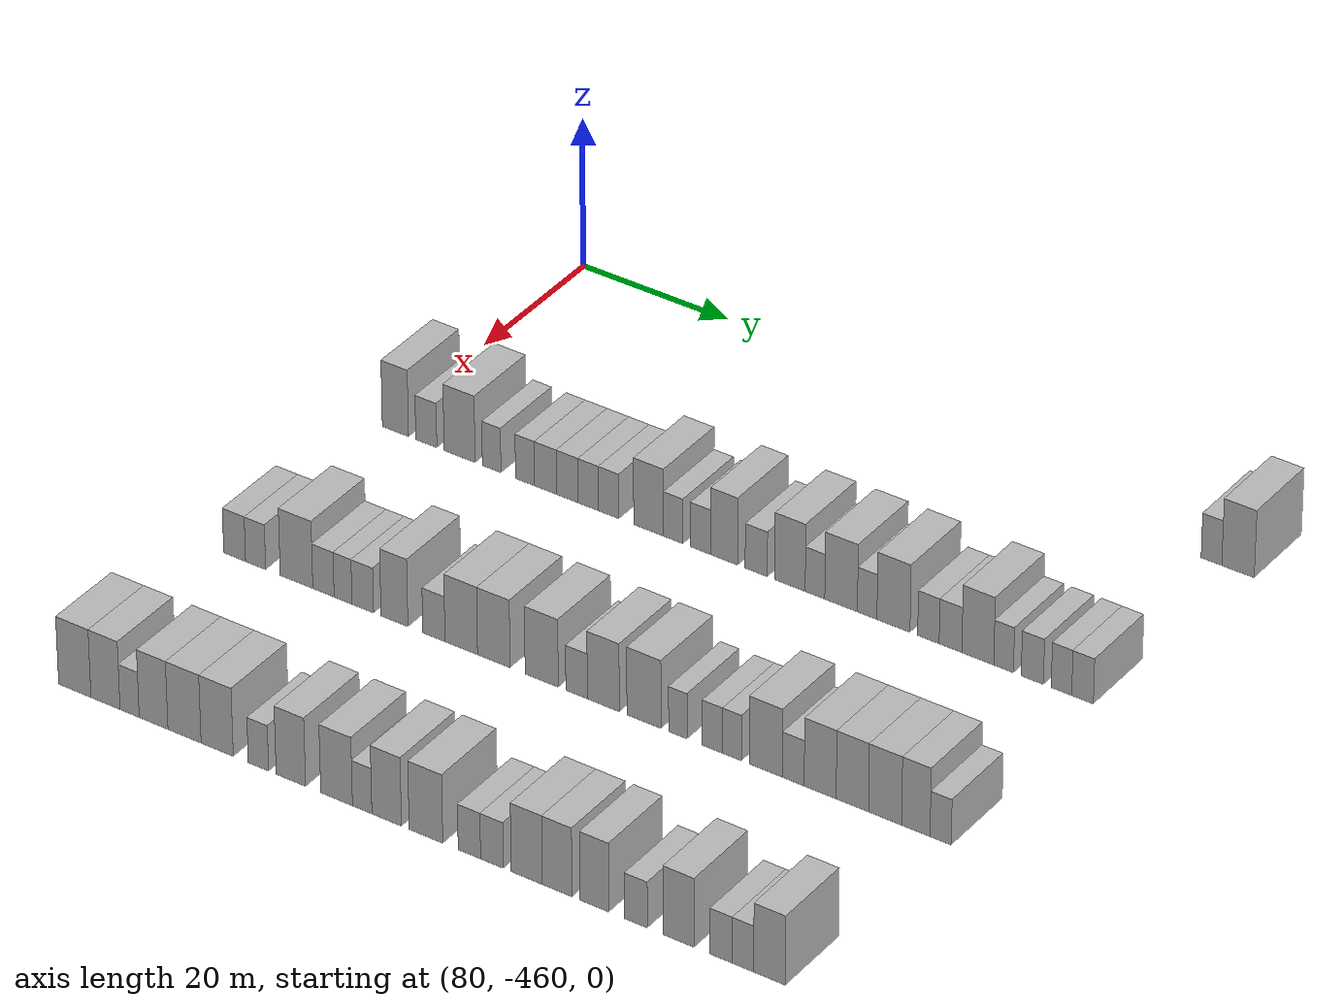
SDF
<sdf version="1.6">
 <world name="default">
  <model name="building_471">
   <static>1</static>
   <pose>85.0000 -368.7892 0 0.000000 0.000000 0.000000</pose>
   <link name="link">
    <pose>0 0 3.00 0 0 0</pose>
    <collision name="collision"><geometry><box><size>10.0000 2.6641 6.0000</size></box></geometry></collision>
    <visual name="visual">
     <cast_shadows>0</cast_shadows>
     <geometry><box><size>10.0000 2.6641 6.0000</size></box></geometry>
     <material>
      <script>
       <uri>model://HANNAS_wall/materials/scripts</uri>
       <uri>model://HANNAS_wall/materials/textures</uri>
       <name>vrc/HANNAS_wall</name>
      </script>
     </material>
    </visual>
   </link>
  </model>
  <model name="building_472">
   <static>1</static>
   <pose>85.0000 -365.3594 0 0.000000 0.000000 0.000000</pose>
   <link name="link">
    <pose>0 0 4.50 0 0 0</pose>
    <collision name="collision"><geometry><box><size>10.0000 4.1955 9.0000</size></box></geometry></collision>
    <visual name="visual">
     <cast_shadows>0</cast_shadows>
     <geometry><box><size>10.0000 4.1955 9.0000</size></box></geometry>
     <material>
      <script>
       <uri>model://HANNAS_wall/materials/scripts</uri>
       <uri>model://HANNAS_wall/materials/textures</uri>
       <name>vrc/HANNAS_wall</name>
      </script>
     </material>
    </visual>
   </link>
  </model>
  <model name="building_667">
   <static>1</static>
   <pose>115.0000 -458.1868 0 0.000000 0.000000 0.000000</pose>
   <link name="link">
    <pose>0 0 4.50 0 0 0</pose>
    <collision name="collision"><geometry><box><size>10.0000 3.6265 9.0000</size></box></geometry></collision>
    <visual name="visual">
     <cast_shadows>0</cast_shadows>
     <geometry><box><size>10.0000 3.6265 9.0000</size></box></geometry>
     <material>
      <script>
       <uri>model://HANNAS_wall/materials/scripts</uri>
       <uri>model://HANNAS_wall/materials/textures</uri>
       <name>vrc/HANNAS_wall</name>
      </script>
     </material>
    </visual>
   </link>
  </model>
  <model name="building_668">
   <static>1</static>
   <pose>115.0000 -453.9146 0 0.000000 0.000000 0.000000</pose>
   <link name="link">
    <pose>0 0 3.00 0 0 0</pose>
    <collision name="collision"><geometry><box><size>10.0000 2.9178 6.0000</size></box></geometry></collision>
    <visual name="visual">
     <cast_shadows>0</cast_shadows>
     <geometry><box><size>10.0000 2.9178 6.0000</size></box></geometry>
     <material>
      <script>
       <uri>model://HANNAS_wall/materials/scripts</uri>
       <uri>model://HANNAS_wall/materials/textures</uri>
       <name>vrc/HANNAS_wall</name>
      </script>
     </material>
    </visual>
   </link>
  </model>
  <model name="building_669">
   <static>1</static>
   <pose>115.0000 -449.3223 0 0.000000 0.000000 0.000000</pose>
   <link name="link">
    <pose>0 0 4.50 0 0 0</pose>
    <collision name="collision"><geometry><box><size>10.0000 4.2668 9.0000</size></box></geometry></collision>
    <visual name="visual">
     <cast_shadows>0</cast_shadows>
     <geometry><box><size>10.0000 4.2668 9.0000</size></box></geometry>
     <material>
      <script>
       <uri>model://HANNAS_wall/materials/scripts</uri>
       <uri>model://HANNAS_wall/materials/textures</uri>
       <name>vrc/HANNAS_wall</name>
      </script>
     </material>
    </visual>
   </link>
  </model>
  <model name="building_670">
   <static>1</static>
   <pose>115.0000 -444.9165 0 0.000000 0.000000 0.000000</pose>
   <link name="link">
    <pose>0 0 3.00 0 0 0</pose>
    <collision name="collision"><geometry><box><size>10.0000 2.5449 6.0000</size></box></geometry></collision>
    <visual name="visual">
     <cast_shadows>0</cast_shadows>
     <geometry><box><size>10.0000 2.5449 6.0000</size></box></geometry>
     <material>
      <script>
       <uri>model://HANNAS_wall/materials/scripts</uri>
       <uri>model://HANNAS_wall/materials/textures</uri>
       <name>vrc/HANNAS_wall</name>
      </script>
     </material>
    </visual>
   </link>
  </model>
  <model name="building_671">
   <static>1</static>
   <pose>115.0000 -440.3422 0 0.000000 0.000000 0.000000</pose>
   <link name="link">
    <pose>0 0 3.00 0 0 0</pose>
    <collision name="collision"><geometry><box><size>10.0000 2.6035 6.0000</size></box></geometry></collision>
    <visual name="visual">
     <cast_shadows>0</cast_shadows>
     <geometry><box><size>10.0000 2.6035 6.0000</size></box></geometry>
     <material>
      <script>
       <uri>model://HANNAS_wall/materials/scripts</uri>
       <uri>model://HANNAS_wall/materials/textures</uri>
       <name>vrc/HANNAS_wall</name>
      </script>
     </material>
    </visual>
   </link>
  </model>
  <model name="building_672">
   <static>1</static>
   <pose>115.0000 -437.5488 0 0.000000 0.000000 0.000000</pose>
   <link name="link">
    <pose>0 0 3.00 0 0 0</pose>
    <collision name="collision"><geometry><box><size>10.0000 2.9833 6.0000</size></box></geometry></collision>
    <visual name="visual">
     <cast_shadows>0</cast_shadows>
     <geometry><box><size>10.0000 2.9833 6.0000</size></box></geometry>
     <material>
      <script>
       <uri>model://HANNAS_wall/materials/scripts</uri>
       <uri>model://HANNAS_wall/materials/textures</uri>
       <name>vrc/HANNAS_wall</name>
      </script>
     </material>
    </visual>
   </link>
  </model>
  <model name="building_673">
   <static>1</static>
   <pose>115.0000 -434.5848 0 0.000000 0.000000 0.000000</pose>
   <link name="link">
    <pose>0 0 3.00 0 0 0</pose>
    <collision name="collision"><geometry><box><size>10.0000 2.9447 6.0000</size></box></geometry></collision>
    <visual name="visual">
     <cast_shadows>0</cast_shadows>
     <geometry><box><size>10.0000 2.9447 6.0000</size></box></geometry>
     <material>
      <script>
       <uri>model://HANNAS_wall/materials/scripts</uri>
       <uri>model://HANNAS_wall/materials/textures</uri>
       <name>vrc/HANNAS_wall</name>
      </script>
     </material>
    </visual>
   </link>
  </model>
  <model name="building_674">
   <static>1</static>
   <pose>115.0000 -431.7319 0 0.000000 0.000000 0.000000</pose>
   <link name="link">
    <pose>0 0 3.00 0 0 0</pose>
    <collision name="collision"><geometry><box><size>10.0000 2.7611 6.0000</size></box></geometry></collision>
    <visual name="visual">
     <cast_shadows>0</cast_shadows>
     <geometry><box><size>10.0000 2.7611 6.0000</size></box></geometry>
     <material>
      <script>
       <uri>model://HANNAS_wall/materials/scripts</uri>
       <uri>model://HANNAS_wall/materials/textures</uri>
       <name>vrc/HANNAS_wall</name>
      </script>
     </material>
    </visual>
   </link>
  </model>
  <model name="building_675">
   <static>1</static>
   <pose>115.0000 -428.9765 0 0.000000 0.000000 0.000000</pose>
   <link name="link">
    <pose>0 0 3.00 0 0 0</pose>
    <collision name="collision"><geometry><box><size>10.0000 2.7498 6.0000</size></box></geometry></collision>
    <visual name="visual">
     <cast_shadows>0</cast_shadows>
     <geometry><box><size>10.0000 2.7498 6.0000</size></box></geometry>
     <material>
      <script>
       <uri>model://HANNAS_wall/materials/scripts</uri>
       <uri>model://HANNAS_wall/materials/textures</uri>
       <name>vrc/HANNAS_wall</name>
      </script>
     </material>
    </visual>
   </link>
  </model>
  <model name="building_676">
   <static>1</static>
   <pose>115.0000 -423.5960 0 0.000000 0.000000 0.000000</pose>
   <link name="link">
    <pose>0 0 4.50 0 0 0</pose>
    <collision name="collision"><geometry><box><size>10.0000 4.0112 9.0000</size></box></geometry></collision>
    <visual name="visual">
     <cast_shadows>0</cast_shadows>
     <geometry><box><size>10.0000 4.0112 9.0000</size></box></geometry>
     <material>
      <script>
       <uri>model://HANNAS_wall/materials/scripts</uri>
       <uri>model://HANNAS_wall/materials/textures</uri>
       <name>vrc/HANNAS_wall</name>
      </script>
     </material>
    </visual>
   </link>
  </model>
  <model name="building_677">
   <static>1</static>
   <pose>115.0000 -420.2844 0 0.000000 0.000000 0.000000</pose>
   <link name="link">
    <pose>0 0 3.00 0 0 0</pose>
    <collision name="collision"><geometry><box><size>10.0000 2.6118 6.0000</size></box></geometry></collision>
    <visual name="visual">
     <cast_shadows>0</cast_shadows>
     <geometry><box><size>10.0000 2.6118 6.0000</size></box></geometry>
     <material>
      <script>
       <uri>model://HANNAS_wall/materials/scripts</uri>
       <uri>model://HANNAS_wall/materials/textures</uri>
       <name>vrc/HANNAS_wall</name>
      </script>
     </material>
    </visual>
   </link>
  </model>
  <model name="building_678">
   <static>1</static>
   <pose>115.0000 -416.6312 0 0.000000 0.000000 0.000000</pose>
   <link name="link">
    <pose>0 0 3.00 0 0 0</pose>
    <collision name="collision"><geometry><box><size>10.0000 2.6947 6.0000</size></box></geometry></collision>
    <visual name="visual">
     <cast_shadows>0</cast_shadows>
     <geometry><box><size>10.0000 2.6947 6.0000</size></box></geometry>
     <material>
      <script>
       <uri>model://HANNAS_wall/materials/scripts</uri>
       <uri>model://HANNAS_wall/materials/textures</uri>
       <name>vrc/HANNAS_wall</name>
      </script>
     </material>
    </visual>
   </link>
  </model>
  <model name="building_679">
   <static>1</static>
   <pose>115.0000 -413.4832 0 0.000000 0.000000 0.000000</pose>
   <link name="link">
    <pose>0 0 4.50 0 0 0</pose>
    <collision name="collision"><geometry><box><size>10.0000 3.6012 9.0000</size></box></geometry></collision>
    <visual name="visual">
     <cast_shadows>0</cast_shadows>
     <geometry><box><size>10.0000 3.6012 9.0000</size></box></geometry>
     <material>
      <script>
       <uri>model://HANNAS_wall/materials/scripts</uri>
       <uri>model://HANNAS_wall/materials/textures</uri>
       <name>vrc/HANNAS_wall</name>
      </script>
     </material>
    </visual>
   </link>
  </model>
  <model name="building_680">
   <static>1</static>
   <pose>115.0000 -409.2097 0 0.000000 0.000000 0.000000</pose>
   <link name="link">
    <pose>0 0 3.00 0 0 0</pose>
    <collision name="collision"><geometry><box><size>10.0000 2.9459 6.0000</size></box></geometry></collision>
    <visual name="visual">
     <cast_shadows>0</cast_shadows>
     <geometry><box><size>10.0000 2.9459 6.0000</size></box></geometry>
     <material>
      <script>
       <uri>model://HANNAS_wall/materials/scripts</uri>
       <uri>model://HANNAS_wall/materials/textures</uri>
       <name>vrc/HANNAS_wall</name>
      </script>
     </material>
    </visual>
   </link>
  </model>
  <model name="building_681">
   <static>1</static>
   <pose>115.0000 -404.7294 0 0.000000 0.000000 0.000000</pose>
   <link name="link">
    <pose>0 0 4.50 0 0 0</pose>
    <collision name="collision"><geometry><box><size>10.0000 4.0145 9.0000</size></box></geometry></collision>
    <visual name="visual">
     <cast_shadows>0</cast_shadows>
     <geometry><box><size>10.0000 4.0145 9.0000</size></box></geometry>
     <material>
      <script>
       <uri>model://HANNAS_wall/materials/scripts</uri>
       <uri>model://HANNAS_wall/materials/textures</uri>
       <name>vrc/HANNAS_wall</name>
      </script>
     </material>
    </visual>
   </link>
  </model>
  <model name="building_682">
   <static>1</static>
   <pose>115.0000 -401.4333 0 0.000000 0.000000 0.000000</pose>
   <link name="link">
    <pose>0 0 3.00 0 0 0</pose>
    <collision name="collision"><geometry><box><size>10.0000 2.5779 6.0000</size></box></geometry></collision>
    <visual name="visual">
     <cast_shadows>0</cast_shadows>
     <geometry><box><size>10.0000 2.5779 6.0000</size></box></geometry>
     <material>
      <script>
       <uri>model://HANNAS_wall/materials/scripts</uri>
       <uri>model://HANNAS_wall/materials/textures</uri>
       <name>vrc/HANNAS_wall</name>
      </script>
     </material>
    </visual>
   </link>
  </model>
  <model name="building_683">
   <static>1</static>
   <pose>115.0000 -397.9989 0 0.000000 0.000000 0.000000</pose>
   <link name="link">
    <pose>0 0 4.50 0 0 0</pose>
    <collision name="collision"><geometry><box><size>10.0000 4.2909 9.0000</size></box></geometry></collision>
    <visual name="visual">
     <cast_shadows>0</cast_shadows>
     <geometry><box><size>10.0000 4.2909 9.0000</size></box></geometry>
     <material>
      <script>
       <uri>model://HANNAS_wall/materials/scripts</uri>
       <uri>model://HANNAS_wall/materials/textures</uri>
       <name>vrc/HANNAS_wall</name>
      </script>
     </material>
    </visual>
   </link>
  </model>
  <model name="building_684">
   <static>1</static>
   <pose>115.0000 -394.5722 0 0.000000 0.000000 0.000000</pose>
   <link name="link">
    <pose>0 0 3.00 0 0 0</pose>
    <collision name="collision"><geometry><box><size>10.0000 2.5625 6.0000</size></box></geometry></collision>
    <visual name="visual">
     <cast_shadows>0</cast_shadows>
     <geometry><box><size>10.0000 2.5625 6.0000</size></box></geometry>
     <material>
      <script>
       <uri>model://HANNAS_wall/materials/scripts</uri>
       <uri>model://HANNAS_wall/materials/textures</uri>
       <name>vrc/HANNAS_wall</name>
      </script>
     </material>
    </visual>
   </link>
  </model>
  <model name="building_685">
   <static>1</static>
   <pose>115.0000 -391.1311 0 0.000000 0.000000 0.000000</pose>
   <link name="link">
    <pose>0 0 4.50 0 0 0</pose>
    <collision name="collision"><geometry><box><size>10.0000 4.3198 9.0000</size></box></geometry></collision>
    <visual name="visual">
     <cast_shadows>0</cast_shadows>
     <geometry><box><size>10.0000 4.3198 9.0000</size></box></geometry>
     <material>
      <script>
       <uri>model://HANNAS_wall/materials/scripts</uri>
       <uri>model://HANNAS_wall/materials/textures</uri>
       <name>vrc/HANNAS_wall</name>
      </script>
     </material>
    </visual>
   </link>
  </model>
  <model name="building_686">
   <static>1</static>
   <pose>115.0000 -386.5739 0 0.000000 0.000000 0.000000</pose>
   <link name="link">
    <pose>0 0 3.00 0 0 0</pose>
    <collision name="collision"><geometry><box><size>10.0000 2.7947 6.0000</size></box></geometry></collision>
    <visual name="visual">
     <cast_shadows>0</cast_shadows>
     <geometry><box><size>10.0000 2.7947 6.0000</size></box></geometry>
     <material>
      <script>
       <uri>model://HANNAS_wall/materials/scripts</uri>
       <uri>model://HANNAS_wall/materials/textures</uri>
       <name>vrc/HANNAS_wall</name>
      </script>
     </material>
    </visual>
   </link>
  </model>
  <model name="building_687">
   <static>1</static>
   <pose>115.0000 -383.7050 0 0.000000 0.000000 0.000000</pose>
   <link name="link">
    <pose>0 0 3.00 0 0 0</pose>
    <collision name="collision"><geometry><box><size>10.0000 2.9430 6.0000</size></box></geometry></collision>
    <visual name="visual">
     <cast_shadows>0</cast_shadows>
     <geometry><box><size>10.0000 2.9430 6.0000</size></box></geometry>
     <material>
      <script>
       <uri>model://HANNAS_wall/materials/scripts</uri>
       <uri>model://HANNAS_wall/materials/textures</uri>
       <name>vrc/HANNAS_wall</name>
      </script>
     </material>
    </visual>
   </link>
  </model>
  <model name="building_688">
   <static>1</static>
   <pose>115.0000 -380.1691 0 0.000000 0.000000 0.000000</pose>
   <link name="link">
    <pose>0 0 4.50 0 0 0</pose>
    <collision name="collision"><geometry><box><size>10.0000 4.1288 9.0000</size></box></geometry></collision>
    <visual name="visual">
     <cast_shadows>0</cast_shadows>
     <geometry><box><size>10.0000 4.1288 9.0000</size></box></geometry>
     <material>
      <script>
       <uri>model://HANNAS_wall/materials/scripts</uri>
       <uri>model://HANNAS_wall/materials/textures</uri>
       <name>vrc/HANNAS_wall</name>
      </script>
     </material>
    </visual>
   </link>
  </model>
  <model name="building_689">
   <static>1</static>
   <pose>115.0000 -376.8340 0 0.000000 0.000000 0.000000</pose>
   <link name="link">
    <pose>0 0 3.00 0 0 0</pose>
    <collision name="collision"><geometry><box><size>10.0000 2.5415 6.0000</size></box></geometry></collision>
    <visual name="visual">
     <cast_shadows>0</cast_shadows>
     <geometry><box><size>10.0000 2.5415 6.0000</size></box></geometry>
     <material>
      <script>
       <uri>model://HANNAS_wall/materials/scripts</uri>
       <uri>model://HANNAS_wall/materials/textures</uri>
       <name>vrc/HANNAS_wall</name>
      </script>
     </material>
    </visual>
   </link>
  </model>
  <model name="building_690">
   <static>1</static>
   <pose>115.0000 -373.1361 0 0.000000 0.000000 0.000000</pose>
   <link name="link">
    <pose>0 0 3.00 0 0 0</pose>
    <collision name="collision"><geometry><box><size>10.0000 2.8544 6.0000</size></box></geometry></collision>
    <visual name="visual">
     <cast_shadows>0</cast_shadows>
     <geometry><box><size>10.0000 2.8544 6.0000</size></box></geometry>
     <material>
      <script>
       <uri>model://HANNAS_wall/materials/scripts</uri>
       <uri>model://HANNAS_wall/materials/textures</uri>
       <name>vrc/HANNAS_wall</name>
      </script>
     </material>
    </visual>
   </link>
  </model>
  <model name="building_691">
   <static>1</static>
   <pose>115.0000 -369.3981 0 0.000000 0.000000 0.000000</pose>
   <link name="link">
    <pose>0 0 3.00 0 0 0</pose>
    <collision name="collision"><geometry><box><size>10.0000 2.6216 6.0000</size></box></geometry></collision>
    <visual name="visual">
     <cast_shadows>0</cast_shadows>
     <geometry><box><size>10.0000 2.6216 6.0000</size></box></geometry>
     <material>
      <script>
       <uri>model://HANNAS_wall/materials/scripts</uri>
       <uri>model://HANNAS_wall/materials/textures</uri>
       <name>vrc/HANNAS_wall</name>
      </script>
     </material>
    </visual>
   </link>
  </model>
  <model name="building_692">
   <static>1</static>
   <pose>115.0000 -366.6998 0 0.000000 0.000000 0.000000</pose>
   <link name="link">
    <pose>0 0 3.00 0 0 0</pose>
    <collision name="collision"><geometry><box><size>10.0000 2.7748 6.0000</size></box></geometry></collision>
    <visual name="visual">
     <cast_shadows>0</cast_shadows>
     <geometry><box><size>10.0000 2.7748 6.0000</size></box></geometry>
     <material>
      <script>
       <uri>model://HANNAS_wall/materials/scripts</uri>
       <uri>model://HANNAS_wall/materials/textures</uri>
       <name>vrc/HANNAS_wall</name>
      </script>
     </material>
    </visual>
   </link>
  </model>
  <model name="building_890">
   <static>1</static>
   <pose>145.0000 -458.5070 0 0.000000 0.000000 0.000000</pose>
   <link name="link">
    <pose>0 0 3.00 0 0 0</pose>
    <collision name="collision"><geometry><box><size>10.0000 2.9860 6.0000</size></box></geometry></collision>
    <visual name="visual">
     <cast_shadows>0</cast_shadows>
     <geometry><box><size>10.0000 2.9860 6.0000</size></box></geometry>
     <material>
      <script>
       <uri>model://HANNAS_wall/materials/scripts</uri>
       <uri>model://HANNAS_wall/materials/textures</uri>
       <name>vrc/HANNAS_wall</name>
      </script>
     </material>
    </visual>
   </link>
  </model>
  <model name="building_891">
   <static>1</static>
   <pose>145.0000 -455.6371 0 0.000000 0.000000 0.000000</pose>
   <link name="link">
    <pose>0 0 3.00 0 0 0</pose>
    <collision name="collision"><geometry><box><size>10.0000 2.7538 6.0000</size></box></geometry></collision>
    <visual name="visual">
     <cast_shadows>0</cast_shadows>
     <geometry><box><size>10.0000 2.7538 6.0000</size></box></geometry>
     <material>
      <script>
       <uri>model://HANNAS_wall/materials/scripts</uri>
       <uri>model://HANNAS_wall/materials/textures</uri>
       <name>vrc/HANNAS_wall</name>
      </script>
     </material>
    </visual>
   </link>
  </model>
  <model name="building_892">
   <static>1</static>
   <pose>145.0000 -450.0409 0 0.000000 0.000000 0.000000</pose>
   <link name="link">
    <pose>0 0 4.50 0 0 0</pose>
    <collision name="collision"><geometry><box><size>10.0000 4.4386 9.0000</size></box></geometry></collision>
    <visual name="visual">
     <cast_shadows>0</cast_shadows>
     <geometry><box><size>10.0000 4.4386 9.0000</size></box></geometry>
     <material>
      <script>
       <uri>model://HANNAS_wall/materials/scripts</uri>
       <uri>model://HANNAS_wall/materials/textures</uri>
       <name>vrc/HANNAS_wall</name>
      </script>
     </material>
    </visual>
   </link>
  </model>
  <model name="building_893">
   <static>1</static>
   <pose>145.0000 -446.3734 0 0.000000 0.000000 0.000000</pose>
   <link name="link">
    <pose>0 0 3.00 0 0 0</pose>
    <collision name="collision"><geometry><box><size>10.0000 2.8964 6.0000</size></box></geometry></collision>
    <visual name="visual">
     <cast_shadows>0</cast_shadows>
     <geometry><box><size>10.0000 2.8964 6.0000</size></box></geometry>
     <material>
      <script>
       <uri>model://HANNAS_wall/materials/scripts</uri>
       <uri>model://HANNAS_wall/materials/textures</uri>
       <name>vrc/HANNAS_wall</name>
      </script>
     </material>
    </visual>
   </link>
  </model>
  <model name="building_894">
   <static>1</static>
   <pose>145.0000 -443.7107 0 0.000000 0.000000 0.000000</pose>
   <link name="link">
    <pose>0 0 3.00 0 0 0</pose>
    <collision name="collision"><geometry><box><size>10.0000 2.4290 6.0000</size></box></geometry></collision>
    <visual name="visual">
     <cast_shadows>0</cast_shadows>
     <geometry><box><size>10.0000 2.4290 6.0000</size></box></geometry>
     <material>
      <script>
       <uri>model://HANNAS_wall/materials/scripts</uri>
       <uri>model://HANNAS_wall/materials/textures</uri>
       <name>vrc/HANNAS_wall</name>
      </script>
     </material>
    </visual>
   </link>
  </model>
  <model name="building_895">
   <static>1</static>
   <pose>145.0000 -441.0350 0 0.000000 0.000000 0.000000</pose>
   <link name="link">
    <pose>0 0 3.00 0 0 0</pose>
    <collision name="collision"><geometry><box><size>10.0000 2.9222 6.0000</size></box></geometry></collision>
    <visual name="visual">
     <cast_shadows>0</cast_shadows>
     <geometry><box><size>10.0000 2.9222 6.0000</size></box></geometry>
     <material>
      <script>
       <uri>model://HANNAS_wall/materials/scripts</uri>
       <uri>model://HANNAS_wall/materials/textures</uri>
       <name>vrc/HANNAS_wall</name>
      </script>
     </material>
    </visual>
   </link>
  </model>
  <model name="building_896">
   <static>1</static>
   <pose>145.0000 -436.7615 0 0.000000 0.000000 0.000000</pose>
   <link name="link">
    <pose>0 0 4.50 0 0 0</pose>
    <collision name="collision"><geometry><box><size>10.0000 3.6248 9.0000</size></box></geometry></collision>
    <visual name="visual">
     <cast_shadows>0</cast_shadows>
     <geometry><box><size>10.0000 3.6248 9.0000</size></box></geometry>
     <material>
      <script>
       <uri>model://HANNAS_wall/materials/scripts</uri>
       <uri>model://HANNAS_wall/materials/textures</uri>
       <name>vrc/HANNAS_wall</name>
      </script>
     </material>
    </visual>
   </link>
  </model>
  <model name="building_897">
   <static>1</static>
   <pose>145.0000 -431.4637 0 0.000000 0.000000 0.000000</pose>
   <link name="link">
    <pose>0 0 3.00 0 0 0</pose>
    <collision name="collision"><geometry><box><size>10.0000 2.9710 6.0000</size></box></geometry></collision>
    <visual name="visual">
     <cast_shadows>0</cast_shadows>
     <geometry><box><size>10.0000 2.9710 6.0000</size></box></geometry>
     <material>
      <script>
       <uri>model://HANNAS_wall/materials/scripts</uri>
       <uri>model://HANNAS_wall/materials/textures</uri>
       <name>vrc/HANNAS_wall</name>
      </script>
     </material>
    </visual>
   </link>
  </model>
  <model name="building_898">
   <static>1</static>
   <pose>145.0000 -427.8027 0 0.000000 0.000000 0.000000</pose>
   <link name="link">
    <pose>0 0 4.50 0 0 0</pose>
    <collision name="collision"><geometry><box><size>10.0000 4.3509 9.0000</size></box></geometry></collision>
    <visual name="visual">
     <cast_shadows>0</cast_shadows>
     <geometry><box><size>10.0000 4.3509 9.0000</size></box></geometry>
     <material>
      <script>
       <uri>model://HANNAS_wall/materials/scripts</uri>
       <uri>model://HANNAS_wall/materials/textures</uri>
       <name>vrc/HANNAS_wall</name>
      </script>
     </material>
    </visual>
   </link>
  </model>
  <model name="building_899">
   <static>1</static>
   <pose>145.0000 -423.4592 0 0.000000 0.000000 0.000000</pose>
   <link name="link">
    <pose>0 0 4.50 0 0 0</pose>
    <collision name="collision"><geometry><box><size>10.0000 4.3362 9.0000</size></box></geometry></collision>
    <visual name="visual">
     <cast_shadows>0</cast_shadows>
     <geometry><box><size>10.0000 4.3362 9.0000</size></box></geometry>
     <material>
      <script>
       <uri>model://HANNAS_wall/materials/scripts</uri>
       <uri>model://HANNAS_wall/materials/textures</uri>
       <name>vrc/HANNAS_wall</name>
      </script>
     </material>
    </visual>
   </link>
  </model>
  <model name="building_900">
   <static>1</static>
   <pose>145.0000 -417.0983 0 0.000000 0.000000 0.000000</pose>
   <link name="link">
    <pose>0 0 4.50 0 0 0</pose>
    <collision name="collision"><geometry><box><size>10.0000 4.3856 9.0000</size></box></geometry></collision>
    <visual name="visual">
     <cast_shadows>0</cast_shadows>
     <geometry><box><size>10.0000 4.3856 9.0000</size></box></geometry>
     <material>
      <script>
       <uri>model://HANNAS_wall/materials/scripts</uri>
       <uri>model://HANNAS_wall/materials/textures</uri>
       <name>vrc/HANNAS_wall</name>
      </script>
     </material>
    </visual>
   </link>
  </model>
  <model name="building_901">
   <static>1</static>
   <pose>145.0000 -412.4858 0 0.000000 0.000000 0.000000</pose>
   <link name="link">
    <pose>0 0 3.00 0 0 0</pose>
    <collision name="collision"><geometry><box><size>10.0000 2.8395 6.0000</size></box></geometry></collision>
    <visual name="visual">
     <cast_shadows>0</cast_shadows>
     <geometry><box><size>10.0000 2.8395 6.0000</size></box></geometry>
     <material>
      <script>
       <uri>model://HANNAS_wall/materials/scripts</uri>
       <uri>model://HANNAS_wall/materials/textures</uri>
       <name>vrc/HANNAS_wall</name>
      </script>
     </material>
    </visual>
   </link>
  </model>
  <model name="building_902">
   <static>1</static>
   <pose>145.0000 -408.9696 0 0.000000 0.000000 0.000000</pose>
   <link name="link">
    <pose>0 0 4.50 0 0 0</pose>
    <collision name="collision"><geometry><box><size>10.0000 4.1930 9.0000</size></box></geometry></collision>
    <visual name="visual">
     <cast_shadows>0</cast_shadows>
     <geometry><box><size>10.0000 4.1930 9.0000</size></box></geometry>
     <material>
      <script>
       <uri>model://HANNAS_wall/materials/scripts</uri>
       <uri>model://HANNAS_wall/materials/textures</uri>
       <name>vrc/HANNAS_wall</name>
      </script>
     </material>
    </visual>
   </link>
  </model>
  <model name="building_903">
   <static>1</static>
   <pose>145.0000 -403.6508 0 0.000000 0.000000 0.000000</pose>
   <link name="link">
    <pose>0 0 4.50 0 0 0</pose>
    <collision name="collision"><geometry><box><size>10.0000 4.4447 9.0000</size></box></geometry></collision>
    <visual name="visual">
     <cast_shadows>0</cast_shadows>
     <geometry><box><size>10.0000 4.4447 9.0000</size></box></geometry>
     <material>
      <script>
       <uri>model://HANNAS_wall/materials/scripts</uri>
       <uri>model://HANNAS_wall/materials/textures</uri>
       <name>vrc/HANNAS_wall</name>
      </script>
     </material>
    </visual>
   </link>
  </model>
  <model name="building_904">
   <static>1</static>
   <pose>145.0000 -399.2280 0 0.000000 0.000000 0.000000</pose>
   <link name="link">
    <pose>0 0 3.00 0 0 0</pose>
    <collision name="collision"><geometry><box><size>10.0000 2.4009 6.0000</size></box></geometry></collision>
    <visual name="visual">
     <cast_shadows>0</cast_shadows>
     <geometry><box><size>10.0000 2.4009 6.0000</size></box></geometry>
     <material>
      <script>
       <uri>model://HANNAS_wall/materials/scripts</uri>
       <uri>model://HANNAS_wall/materials/textures</uri>
       <name>vrc/HANNAS_wall</name>
      </script>
     </material>
    </visual>
   </link>
  </model>
  <model name="building_905">
   <static>1</static>
   <pose>145.0000 -394.7225 0 0.000000 0.000000 0.000000</pose>
   <link name="link">
    <pose>0 0 3.00 0 0 0</pose>
    <collision name="collision"><geometry><box><size>10.0000 2.6101 6.0000</size></box></geometry></collision>
    <visual name="visual">
     <cast_shadows>0</cast_shadows>
     <geometry><box><size>10.0000 2.6101 6.0000</size></box></geometry>
     <material>
      <script>
       <uri>model://HANNAS_wall/materials/scripts</uri>
       <uri>model://HANNAS_wall/materials/textures</uri>
       <name>vrc/HANNAS_wall</name>
      </script>
     </material>
    </visual>
   </link>
  </model>
  <model name="building_906">
   <static>1</static>
   <pose>145.0000 -392.2000 0 0.000000 0.000000 0.000000</pose>
   <link name="link">
    <pose>0 0 3.00 0 0 0</pose>
    <collision name="collision"><geometry><box><size>10.0000 2.4347 6.0000</size></box></geometry></collision>
    <visual name="visual">
     <cast_shadows>0</cast_shadows>
     <geometry><box><size>10.0000 2.4347 6.0000</size></box></geometry>
     <material>
      <script>
       <uri>model://HANNAS_wall/materials/scripts</uri>
       <uri>model://HANNAS_wall/materials/textures</uri>
       <name>vrc/HANNAS_wall</name>
      </script>
     </material>
    </visual>
   </link>
  </model>
  <model name="building_907">
   <static>1</static>
   <pose>145.0000 -387.8361 0 0.000000 0.000000 0.000000</pose>
   <link name="link">
    <pose>0 0 4.50 0 0 0</pose>
    <collision name="collision"><geometry><box><size>10.0000 4.2931 9.0000</size></box></geometry></collision>
    <visual name="visual">
     <cast_shadows>0</cast_shadows>
     <geometry><box><size>10.0000 4.2931 9.0000</size></box></geometry>
     <material>
      <script>
       <uri>model://HANNAS_wall/materials/scripts</uri>
       <uri>model://HANNAS_wall/materials/textures</uri>
       <name>vrc/HANNAS_wall</name>
      </script>
     </material>
    </visual>
   </link>
  </model>
  <model name="building_908">
   <static>1</static>
   <pose>145.0000 -384.2962 0 0.000000 0.000000 0.000000</pose>
   <link name="link">
    <pose>0 0 3.00 0 0 0</pose>
    <collision name="collision"><geometry><box><size>10.0000 2.7867 6.0000</size></box></geometry></collision>
    <visual name="visual">
     <cast_shadows>0</cast_shadows>
     <geometry><box><size>10.0000 2.7867 6.0000</size></box></geometry>
     <material>
      <script>
       <uri>model://HANNAS_wall/materials/scripts</uri>
       <uri>model://HANNAS_wall/materials/textures</uri>
       <name>vrc/HANNAS_wall</name>
      </script>
     </material>
    </visual>
   </link>
  </model>
  <model name="building_909">
   <static>1</static>
   <pose>145.0000 -380.8576 0 0.000000 0.000000 0.000000</pose>
   <link name="link">
    <pose>0 0 4.50 0 0 0</pose>
    <collision name="collision"><geometry><box><size>10.0000 4.0905 9.0000</size></box></geometry></collision>
    <visual name="visual">
     <cast_shadows>0</cast_shadows>
     <geometry><box><size>10.0000 4.0905 9.0000</size></box></geometry>
     <material>
      <script>
       <uri>model://HANNAS_wall/materials/scripts</uri>
       <uri>model://HANNAS_wall/materials/textures</uri>
       <name>vrc/HANNAS_wall</name>
      </script>
     </material>
    </visual>
   </link>
  </model>
  <model name="building_910">
   <static>1</static>
   <pose>145.0000 -376.7476 0 0.000000 0.000000 0.000000</pose>
   <link name="link">
    <pose>0 0 4.50 0 0 0</pose>
    <collision name="collision"><geometry><box><size>10.0000 4.1295 9.0000</size></box></geometry></collision>
    <visual name="visual">
     <cast_shadows>0</cast_shadows>
     <geometry><box><size>10.0000 4.1295 9.0000</size></box></geometry>
     <material>
      <script>
       <uri>model://HANNAS_wall/materials/scripts</uri>
       <uri>model://HANNAS_wall/materials/textures</uri>
       <name>vrc/HANNAS_wall</name>
      </script>
     </material>
    </visual>
   </link>
  </model>
  <model name="building_911">
   <static>1</static>
   <pose>145.0000 -372.5850 0 0.000000 0.000000 0.000000</pose>
   <link name="link">
    <pose>0 0 4.50 0 0 0</pose>
    <collision name="collision"><geometry><box><size>10.0000 4.1958 9.0000</size></box></geometry></collision>
    <visual name="visual">
     <cast_shadows>0</cast_shadows>
     <geometry><box><size>10.0000 4.1958 9.0000</size></box></geometry>
     <material>
      <script>
       <uri>model://HANNAS_wall/materials/scripts</uri>
       <uri>model://HANNAS_wall/materials/textures</uri>
       <name>vrc/HANNAS_wall</name>
      </script>
     </material>
    </visual>
   </link>
  </model>
  <model name="building_912">
   <static>1</static>
   <pose>145.0000 -368.6812 0 0.000000 0.000000 0.000000</pose>
   <link name="link">
    <pose>0 0 4.50 0 0 0</pose>
    <collision name="collision"><geometry><box><size>10.0000 3.6118 9.0000</size></box></geometry></collision>
    <visual name="visual">
     <cast_shadows>0</cast_shadows>
     <geometry><box><size>10.0000 3.6118 9.0000</size></box></geometry>
     <material>
      <script>
       <uri>model://HANNAS_wall/materials/scripts</uri>
       <uri>model://HANNAS_wall/materials/textures</uri>
       <name>vrc/HANNAS_wall</name>
      </script>
     </material>
    </visual>
   </link>
  </model>
  <model name="building_913">
   <static>1</static>
   <pose>145.0000 -365.5414 0 0.000000 0.000000 0.000000</pose>
   <link name="link">
    <pose>0 0 3.00 0 0 0</pose>
    <collision name="collision"><geometry><box><size>10.0000 2.6677 6.0000</size></box></geometry></collision>
    <visual name="visual">
     <cast_shadows>0</cast_shadows>
     <geometry><box><size>10.0000 2.6677 6.0000</size></box></geometry>
     <material>
      <script>
       <uri>model://HANNAS_wall/materials/scripts</uri>
       <uri>model://HANNAS_wall/materials/textures</uri>
       <name>vrc/HANNAS_wall</name>
      </script>
     </material>
    </visual>
   </link>
  </model>
  <model name="building_1114">
   <static>1</static>
   <pose>175.0000 -457.8155 0 0.000000 0.000000 0.000000</pose>
   <link name="link">
    <pose>0 0 4.50 0 0 0</pose>
    <collision name="collision"><geometry><box><size>10.0000 4.3689 9.0000</size></box></geometry></collision>
    <visual name="visual">
     <cast_shadows>0</cast_shadows>
     <geometry><box><size>10.0000 4.3689 9.0000</size></box></geometry>
     <material>
      <script>
       <uri>model://HANNAS_wall/materials/scripts</uri>
       <uri>model://HANNAS_wall/materials/textures</uri>
       <name>vrc/HANNAS_wall</name>
      </script>
     </material>
    </visual>
   </link>
  </model>
  <model name="building_1115">
   <static>1</static>
   <pose>175.0000 -453.6605 0 0.000000 0.000000 0.000000</pose>
   <link name="link">
    <pose>0 0 4.50 0 0 0</pose>
    <collision name="collision"><geometry><box><size>10.0000 3.9412 9.0000</size></box></geometry></collision>
    <visual name="visual">
     <cast_shadows>0</cast_shadows>
     <geometry><box><size>10.0000 3.9412 9.0000</size></box></geometry>
     <material>
      <script>
       <uri>model://HANNAS_wall/materials/scripts</uri>
       <uri>model://HANNAS_wall/materials/textures</uri>
       <name>vrc/HANNAS_wall</name>
      </script>
     </material>
    </visual>
   </link>
  </model>
  <model name="building_1116">
   <static>1</static>
   <pose>175.0000 -450.3945 0 0.000000 0.000000 0.000000</pose>
   <link name="link">
    <pose>0 0 3.00 0 0 0</pose>
    <collision name="collision"><geometry><box><size>10.0000 2.5907 6.0000</size></box></geometry></collision>
    <visual name="visual">
     <cast_shadows>0</cast_shadows>
     <geometry><box><size>10.0000 2.5907 6.0000</size></box></geometry>
     <material>
      <script>
       <uri>model://HANNAS_wall/materials/scripts</uri>
       <uri>model://HANNAS_wall/materials/textures</uri>
       <name>vrc/HANNAS_wall</name>
      </script>
     </material>
    </visual>
   </link>
  </model>
  <model name="building_1117">
   <static>1</static>
   <pose>175.0000 -447.1640 0 0.000000 0.000000 0.000000</pose>
   <link name="link">
    <pose>0 0 4.50 0 0 0</pose>
    <collision name="collision"><geometry><box><size>10.0000 3.8704 9.0000</size></box></geometry></collision>
    <visual name="visual">
     <cast_shadows>0</cast_shadows>
     <geometry><box><size>10.0000 3.8704 9.0000</size></box></geometry>
     <material>
      <script>
       <uri>model://HANNAS_wall/materials/scripts</uri>
       <uri>model://HANNAS_wall/materials/textures</uri>
       <name>vrc/HANNAS_wall</name>
      </script>
     </material>
    </visual>
   </link>
  </model>
  <model name="building_1118">
   <static>1</static>
   <pose>175.0000 -443.0057 0 0.000000 0.000000 0.000000</pose>
   <link name="link">
    <pose>0 0 4.50 0 0 0</pose>
    <collision name="collision"><geometry><box><size>10.0000 4.4461 9.0000</size></box></geometry></collision>
    <visual name="visual">
     <cast_shadows>0</cast_shadows>
     <geometry><box><size>10.0000 4.4461 9.0000</size></box></geometry>
     <material>
      <script>
       <uri>model://HANNAS_wall/materials/scripts</uri>
       <uri>model://HANNAS_wall/materials/textures</uri>
       <name>vrc/HANNAS_wall</name>
      </script>
     </material>
    </visual>
   </link>
  </model>
  <model name="building_1119">
   <static>1</static>
   <pose>175.0000 -438.6319 0 0.000000 0.000000 0.000000</pose>
   <link name="link">
    <pose>0 0 4.50 0 0 0</pose>
    <collision name="collision"><geometry><box><size>10.0000 4.3015 9.0000</size></box></geometry></collision>
    <visual name="visual">
     <cast_shadows>0</cast_shadows>
     <geometry><box><size>10.0000 4.3015 9.0000</size></box></geometry>
     <material>
      <script>
       <uri>model://HANNAS_wall/materials/scripts</uri>
       <uri>model://HANNAS_wall/materials/textures</uri>
       <name>vrc/HANNAS_wall</name>
      </script>
     </material>
    </visual>
   </link>
  </model>
  <model name="building_1120">
   <static>1</static>
   <pose>175.0000 -433.1293 0 0.000000 0.000000 0.000000</pose>
   <link name="link">
    <pose>0 0 3.00 0 0 0</pose>
    <collision name="collision"><geometry><box><size>10.0000 2.7037 6.0000</size></box></geometry></collision>
    <visual name="visual">
     <cast_shadows>0</cast_shadows>
     <geometry><box><size>10.0000 2.7037 6.0000</size></box></geometry>
     <material>
      <script>
       <uri>model://HANNAS_wall/materials/scripts</uri>
       <uri>model://HANNAS_wall/materials/textures</uri>
       <name>vrc/HANNAS_wall</name>
      </script>
     </material>
    </visual>
   </link>
  </model>
  <model name="building_1121">
   <static>1</static>
   <pose>175.0000 -428.8271 0 0.000000 0.000000 0.000000</pose>
   <link name="link">
    <pose>0 0 4.50 0 0 0</pose>
    <collision name="collision"><geometry><box><size>10.0000 3.9008 9.0000</size></box></geometry></collision>
    <visual name="visual">
     <cast_shadows>0</cast_shadows>
     <geometry><box><size>10.0000 3.9008 9.0000</size></box></geometry>
     <material>
      <script>
       <uri>model://HANNAS_wall/materials/scripts</uri>
       <uri>model://HANNAS_wall/materials/textures</uri>
       <name>vrc/HANNAS_wall</name>
      </script>
     </material>
    </visual>
   </link>
  </model>
  <model name="building_1122">
   <static>1</static>
   <pose>175.0000 -422.7883 0 0.000000 0.000000 0.000000</pose>
   <link name="link">
    <pose>0 0 4.50 0 0 0</pose>
    <collision name="collision"><geometry><box><size>10.0000 4.1768 9.0000</size></box></geometry></collision>
    <visual name="visual">
     <cast_shadows>0</cast_shadows>
     <geometry><box><size>10.0000 4.1768 9.0000</size></box></geometry>
     <material>
      <script>
       <uri>model://HANNAS_wall/materials/scripts</uri>
       <uri>model://HANNAS_wall/materials/textures</uri>
       <name>vrc/HANNAS_wall</name>
      </script>
     </material>
    </visual>
   </link>
  </model>
  <model name="building_1123">
   <static>1</static>
   <pose>175.0000 -419.4272 0 0.000000 0.000000 0.000000</pose>
   <link name="link">
    <pose>0 0 3.00 0 0 0</pose>
    <collision name="collision"><geometry><box><size>10.0000 2.5453 6.0000</size></box></geometry></collision>
    <visual name="visual">
     <cast_shadows>0</cast_shadows>
     <geometry><box><size>10.0000 2.5453 6.0000</size></box></geometry>
     <material>
      <script>
       <uri>model://HANNAS_wall/materials/scripts</uri>
       <uri>model://HANNAS_wall/materials/textures</uri>
       <name>vrc/HANNAS_wall</name>
      </script>
     </material>
    </visual>
   </link>
  </model>
  <model name="building_1124">
   <static>1</static>
   <pose>175.0000 -416.2169 0 0.000000 0.000000 0.000000</pose>
   <link name="link">
    <pose>0 0 4.50 0 0 0</pose>
    <collision name="collision"><geometry><box><size>10.0000 3.8752 9.0000</size></box></geometry></collision>
    <visual name="visual">
     <cast_shadows>0</cast_shadows>
     <geometry><box><size>10.0000 3.8752 9.0000</size></box></geometry>
     <material>
      <script>
       <uri>model://HANNAS_wall/materials/scripts</uri>
       <uri>model://HANNAS_wall/materials/textures</uri>
       <name>vrc/HANNAS_wall</name>
      </script>
     </material>
    </visual>
   </link>
  </model>
  <model name="building_1125">
   <static>1</static>
   <pose>175.0000 -411.0865 0 0.000000 0.000000 0.000000</pose>
   <link name="link">
    <pose>0 0 4.50 0 0 0</pose>
    <collision name="collision"><geometry><box><size>10.0000 4.3857 9.0000</size></box></geometry></collision>
    <visual name="visual">
     <cast_shadows>0</cast_shadows>
     <geometry><box><size>10.0000 4.3857 9.0000</size></box></geometry>
     <material>
      <script>
       <uri>model://HANNAS_wall/materials/scripts</uri>
       <uri>model://HANNAS_wall/materials/textures</uri>
       <name>vrc/HANNAS_wall</name>
      </script>
     </material>
    </visual>
   </link>
  </model>
  <model name="building_1126">
   <static>1</static>
   <pose>175.0000 -405.4443 0 0.000000 0.000000 0.000000</pose>
   <link name="link">
    <pose>0 0 3.00 0 0 0</pose>
    <collision name="collision"><geometry><box><size>10.0000 2.8986 6.0000</size></box></geometry></collision>
    <visual name="visual">
     <cast_shadows>0</cast_shadows>
     <geometry><box><size>10.0000 2.8986 6.0000</size></box></geometry>
     <material>
      <script>
       <uri>model://HANNAS_wall/materials/scripts</uri>
       <uri>model://HANNAS_wall/materials/textures</uri>
       <name>vrc/HANNAS_wall</name>
      </script>
     </material>
    </visual>
   </link>
  </model>
  <model name="building_1127">
   <static>1</static>
   <pose>175.0000 -402.5219 0 0.000000 0.000000 0.000000</pose>
   <link name="link">
    <pose>0 0 3.00 0 0 0</pose>
    <collision name="collision"><geometry><box><size>10.0000 2.9462 6.0000</size></box></geometry></collision>
    <visual name="visual">
     <cast_shadows>0</cast_shadows>
     <geometry><box><size>10.0000 2.9462 6.0000</size></box></geometry>
     <material>
      <script>
       <uri>model://HANNAS_wall/materials/scripts</uri>
       <uri>model://HANNAS_wall/materials/textures</uri>
       <name>vrc/HANNAS_wall</name>
      </script>
     </material>
    </visual>
   </link>
  </model>
  <model name="building_1128">
   <static>1</static>
   <pose>175.0000 -398.0498 0 0.000000 0.000000 0.000000</pose>
   <link name="link">
    <pose>0 0 4.50 0 0 0</pose>
    <collision name="collision"><geometry><box><size>10.0000 3.9981 9.0000</size></box></geometry></collision>
    <visual name="visual">
     <cast_shadows>0</cast_shadows>
     <geometry><box><size>10.0000 3.9981 9.0000</size></box></geometry>
     <material>
      <script>
       <uri>model://HANNAS_wall/materials/scripts</uri>
       <uri>model://HANNAS_wall/materials/textures</uri>
       <name>vrc/HANNAS_wall</name>
      </script>
     </material>
    </visual>
   </link>
  </model>
  <model name="building_1129">
   <static>1</static>
   <pose>175.0000 -394.1399 0 0.000000 0.000000 0.000000</pose>
   <link name="link">
    <pose>0 0 4.50 0 0 0</pose>
    <collision name="collision"><geometry><box><size>10.0000 3.8217 9.0000</size></box></geometry></collision>
    <visual name="visual">
     <cast_shadows>0</cast_shadows>
     <geometry><box><size>10.0000 3.8217 9.0000</size></box></geometry>
     <material>
      <script>
       <uri>model://HANNAS_wall/materials/scripts</uri>
       <uri>model://HANNAS_wall/materials/textures</uri>
       <name>vrc/HANNAS_wall</name>
      </script>
     </material>
    </visual>
   </link>
  </model>
  <model name="building_1130">
   <static>1</static>
   <pose>175.0000 -389.3793 0 0.000000 0.000000 0.000000</pose>
   <link name="link">
    <pose>0 0 4.50 0 0 0</pose>
    <collision name="collision"><geometry><box><size>10.0000 3.6996 9.0000</size></box></geometry></collision>
    <visual name="visual">
     <cast_shadows>0</cast_shadows>
     <geometry><box><size>10.0000 3.6996 9.0000</size></box></geometry>
     <material>
      <script>
       <uri>model://HANNAS_wall/materials/scripts</uri>
       <uri>model://HANNAS_wall/materials/textures</uri>
       <name>vrc/HANNAS_wall</name>
      </script>
     </material>
    </visual>
   </link>
  </model>
  <model name="building_1131">
   <static>1</static>
   <pose>175.0000 -384.0836 0 0.000000 0.000000 0.000000</pose>
   <link name="link">
    <pose>0 0 3.00 0 0 0</pose>
    <collision name="collision"><geometry><box><size>10.0000 2.8919 6.0000</size></box></geometry></collision>
    <visual name="visual">
     <cast_shadows>0</cast_shadows>
     <geometry><box><size>10.0000 2.8919 6.0000</size></box></geometry>
     <material>
      <script>
       <uri>model://HANNAS_wall/materials/scripts</uri>
       <uri>model://HANNAS_wall/materials/textures</uri>
       <name>vrc/HANNAS_wall</name>
      </script>
     </material>
    </visual>
   </link>
  </model>
  <model name="building_1132">
   <static>1</static>
   <pose>175.0000 -378.6826 0 0.000000 0.000000 0.000000</pose>
   <link name="link">
    <pose>0 0 4.50 0 0 0</pose>
    <collision name="collision"><geometry><box><size>10.0000 3.9099 9.0000</size></box></geometry></collision>
    <visual name="visual">
     <cast_shadows>0</cast_shadows>
     <geometry><box><size>10.0000 3.9099 9.0000</size></box></geometry>
     <material>
      <script>
       <uri>model://HANNAS_wall/materials/scripts</uri>
       <uri>model://HANNAS_wall/materials/textures</uri>
       <name>vrc/HANNAS_wall</name>
      </script>
     </material>
    </visual>
   </link>
  </model>
  <model name="building_1133">
   <static>1</static>
   <pose>175.0000 -373.3299 0 0.000000 0.000000 0.000000</pose>
   <link name="link">
    <pose>0 0 3.00 0 0 0</pose>
    <collision name="collision"><geometry><box><size>10.0000 2.7956 6.0000</size></box></geometry></collision>
    <visual name="visual">
     <cast_shadows>0</cast_shadows>
     <geometry><box><size>10.0000 2.7956 6.0000</size></box></geometry>
     <material>
      <script>
       <uri>model://HANNAS_wall/materials/scripts</uri>
       <uri>model://HANNAS_wall/materials/textures</uri>
       <name>vrc/HANNAS_wall</name>
      </script>
     </material>
    </visual>
   </link>
  </model>
  <model name="building_1134">
   <static>1</static>
   <pose>175.0000 -370.5864 0 0.000000 0.000000 0.000000</pose>
   <link name="link">
    <pose>0 0 3.00 0 0 0</pose>
    <collision name="collision"><geometry><box><size>10.0000 2.6915 6.0000</size></box></geometry></collision>
    <visual name="visual">
     <cast_shadows>0</cast_shadows>
     <geometry><box><size>10.0000 2.6915 6.0000</size></box></geometry>
     <material>
      <script>
       <uri>model://HANNAS_wall/materials/scripts</uri>
       <uri>model://HANNAS_wall/materials/textures</uri>
       <name>vrc/HANNAS_wall</name>
      </script>
     </material>
    </visual>
   </link>
  </model>
  <model name="building_1135">
   <static>1</static>
   <pose>175.0000 -367.2593 0 0.000000 0.000000 0.000000</pose>
   <link name="link">
    <pose>0 0 4.50 0 0 0</pose>
    <collision name="collision"><geometry><box><size>10.0000 3.9628 9.0000</size></box></geometry></collision>
    <visual name="visual">
     <cast_shadows>0</cast_shadows>
     <geometry><box><size>10.0000 3.9628 9.0000</size></box></geometry>
     <material>
      <script>
       <uri>model://HANNAS_wall/materials/scripts</uri>
       <uri>model://HANNAS_wall/materials/textures</uri>
       <name>vrc/HANNAS_wall</name>
      </script>
     </material>
    </visual>
   </link>
  </model>
 </world>
</sdf>
